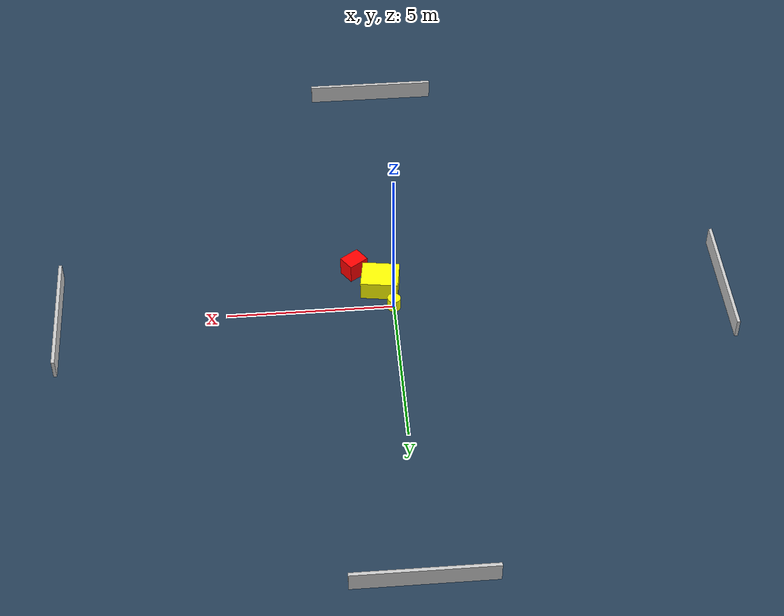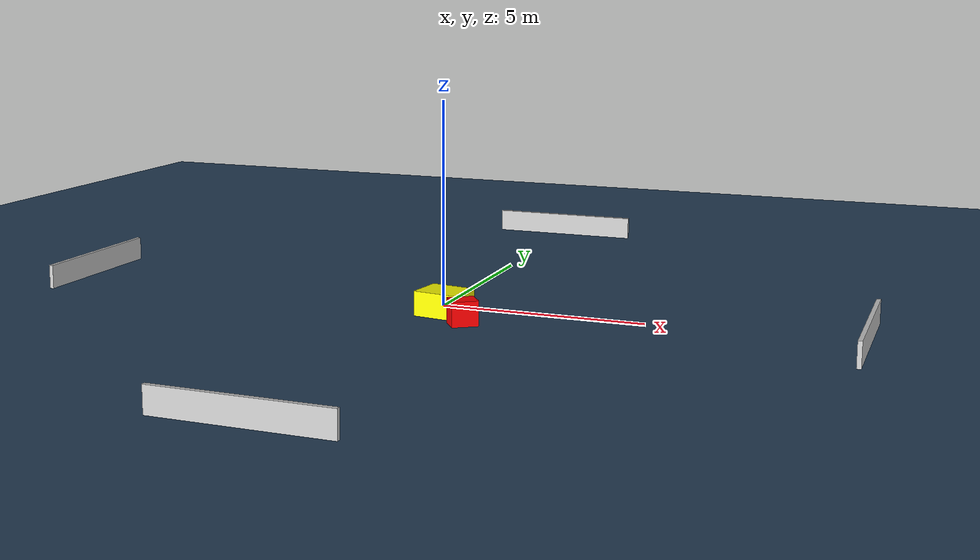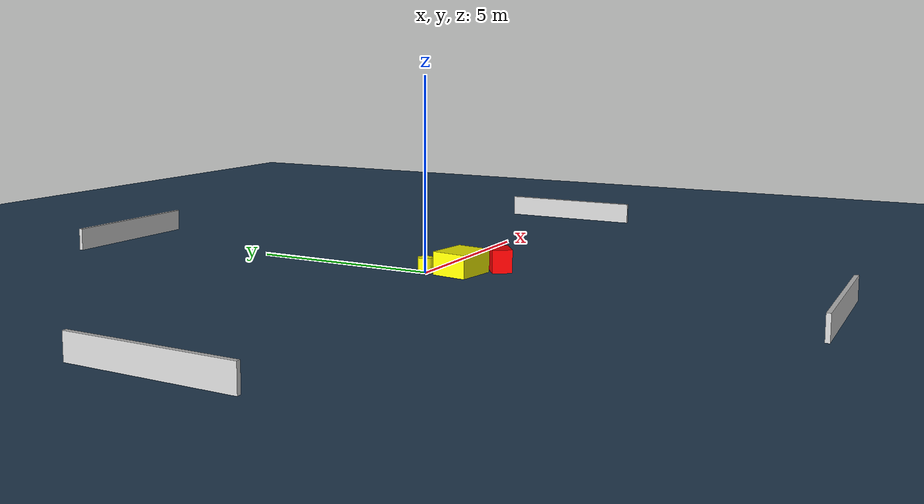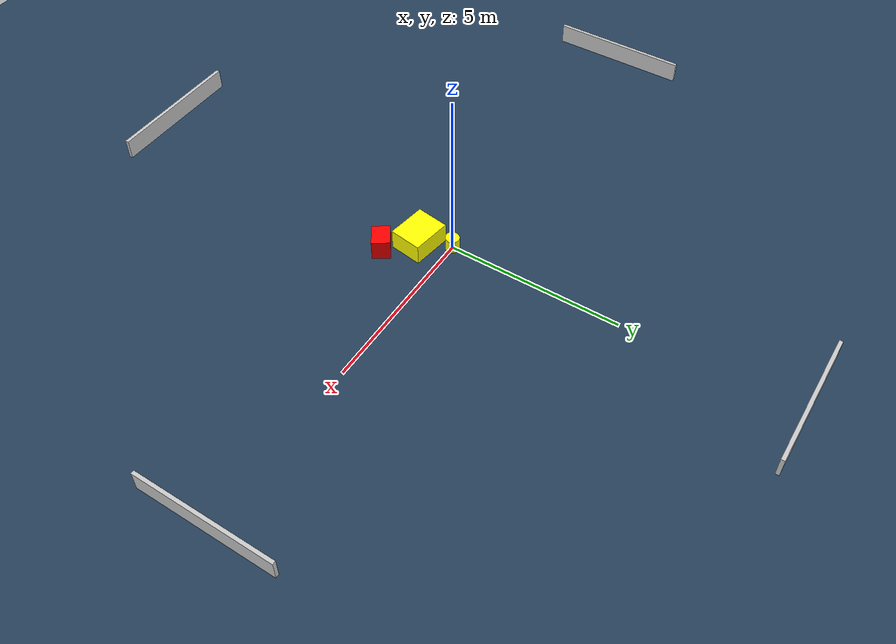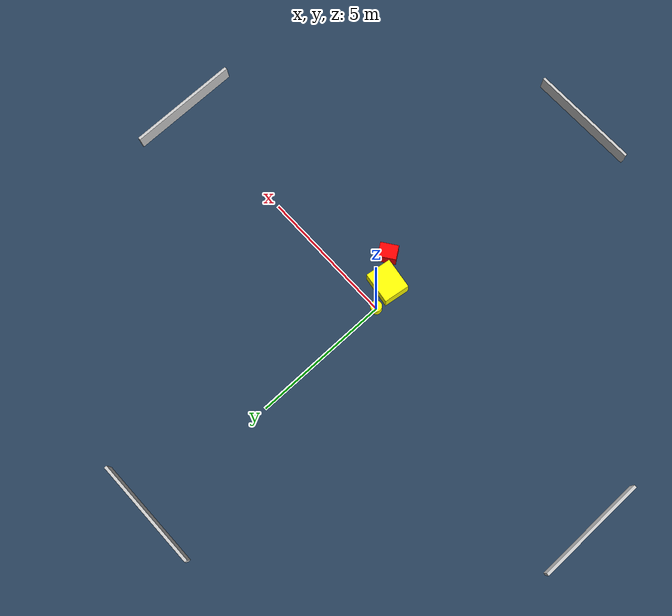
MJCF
<?xml version="1.0" ?>
<mujoco model="generated_environment">
  <option timestep="0.01" integrator="RK4" cone="elliptic"/>
  <default>
    <geom density="1"/>
  </default>
  <asset>
    <texture builtin="gradient" height="3072" name="skybox" rgb1="0.3 0.5 0.7" rgb2="0 0 0" type="skybox" width="512"/>
    <texture builtin="checker" height="300" name="groundplane" rgb1="0.2 0.3 0.4" rgb2="0.1 0.2 0.3" type="2d" width="300"/>
    <material name="groundplane" reflectance="0.2" texrepeat="5 5" texture="groundplane"/>
  </asset>
  <worldbody>
    <light dir="0 0 -1" directional="true" pos="0 0 1.5"/>
    <geom condim="3" friction="0.5 0.005 0.001" material="groundplane" name="floor" pos="0 0 0" size="0 0 0.05" type="plane"/>
    <body name="walls">
      <geom name="wall_1" condim="4" pos="-10.0 0.0 0.3" rgba="0.800000011920929 0.800000011920929 0.800000011920929 1.0" size="0.05 2.0 0.3" type="box"/>
      <geom name="wall_2" condim="4" pos="10.0 0.0 0.3" rgba="0.800000011920929 0.800000011920929 0.800000011920929 1.0" size="0.05 2.0 0.3" type="box"/>
      <geom name="wall_3" condim="4" pos="0.0 -10.0 0.3" rgba="0.800000011920929 0.800000011920929 0.800000011920929 1.0" size="2.0 0.05 0.3" type="box"/>
      <geom name="wall_4" condim="4" pos="0.0 10.0 0.3" rgba="0.800000011920929 0.800000011920929 0.800000011920929 1.0" size="2.0 0.05 0.3" type="box"/>
    </body>
    <body name="robot">
      <joint name="joint_x" type="slide" pos="0 0 0" axis="1 0 0"/>
      <joint name="joint_y" type="slide" pos="0 0 0" axis="0 1 0"/>
      <geom name="robot" type="cylinder" pos="0.0 0.0 0.2" size="0.2 0.2 0.0" mass="5.0" friction="1.0 0.005 0.0001" condim="4" rgba="1.0 1.0 0.0 1.0"/>
    </body>
    <body name="obstacle_1_movable">
      <geom name="obstacle_1_movable" condim="4" pos="0.35450141894922743 -0.8455980267766081 0.3" euler="0 0 81.66309405971971" friction="0.0 0.005 0.001" rgba="1.0 1.0 0.0 1.0" size="0.4668230137983135 0.5632315113108758 0.3" type="box" mass="0.1"/>
      <joint type="free"/>
    </body>
    <body name="obstacle_2_static">
      <geom name="obstacle_2_static" condim="4" pos="1.1010628447855304 -1.5782178131351743 0.3" euler="0 0 304.95255341701295" friction="0.0 0.005 0.001" rgba="1.0 0.0 0.0 1.0" size="0.25705621021226976 0.32140857583479066 0.3" type="box"/>
    </body>
  </worldbody>
  <actuator>
    <motor name="actuator_x" joint="joint_x" gear="1" ctrlrange="-1 1"/>
    <motor name="actuator_y" joint="joint_y" gear="1" ctrlrange="-1 1"/>
  </actuator>
</mujoco>
